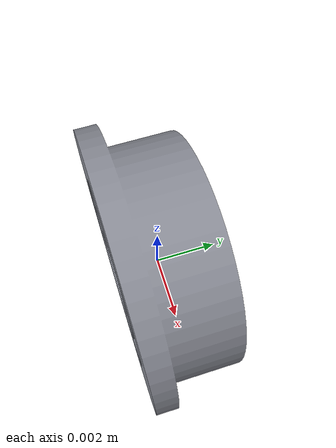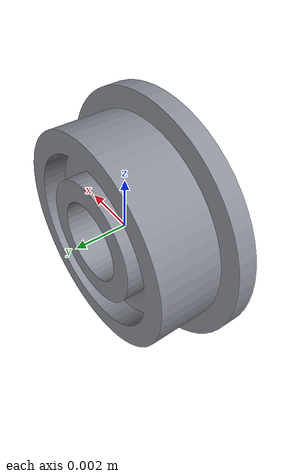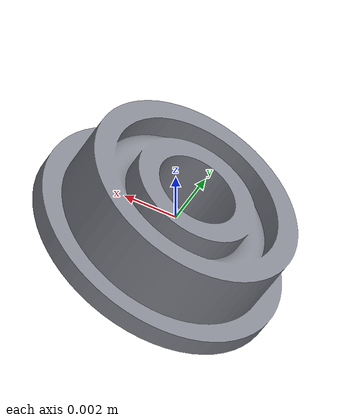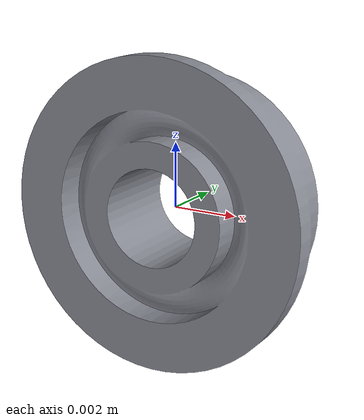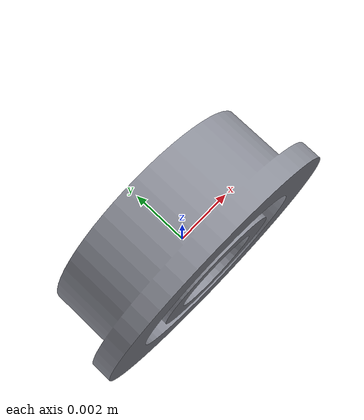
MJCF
<?xml version='1.0' encoding='utf-8'?>
<mujoco model="part_bearing">
  <compiler angle="radian" meshdir="." autolimits="true"/>
  <visual>
    <global offwidth="1024" offheight="1024"/>
    <headlight ambient="0.55 0.55 0.55" diffuse="0.6 0.6 0.6" specular="0.2 0.2 0.2"/>
  </visual>
  <default>
    <default class="visual"><geom type="mesh" contype="0" conaffinity="0" group="2" density="0"/></default>
    <default class="collision"><geom type="mesh" group="3"/></default>
  </default>
  <asset>
    <mesh name="bearing" file="法兰轴承.STL" scale="0.001 0.001 0.001"/>
    <material name="steel" rgba="0.55 0.56 0.60 1"/>
  </asset>
  <worldbody>
    <!-- source 法兰轴承.STL: bbox min 0.000000 0.000000 0.000000 max 9.500000 3.000000 9.500000 mm, size 9.500000 3.000000 9.500000 mm -->
    <body name="bearing">
      <geom name="bearing_visual" mesh="bearing" class="visual" material="steel" pos="-0.004750 -0.001500 -0.004750"/>
      <geom name="bearing_collision" mesh="bearing" class="collision" pos="-0.004750 -0.001500 -0.004750" density="7800"/>
    </body>
  </worldbody>
</mujoco>
